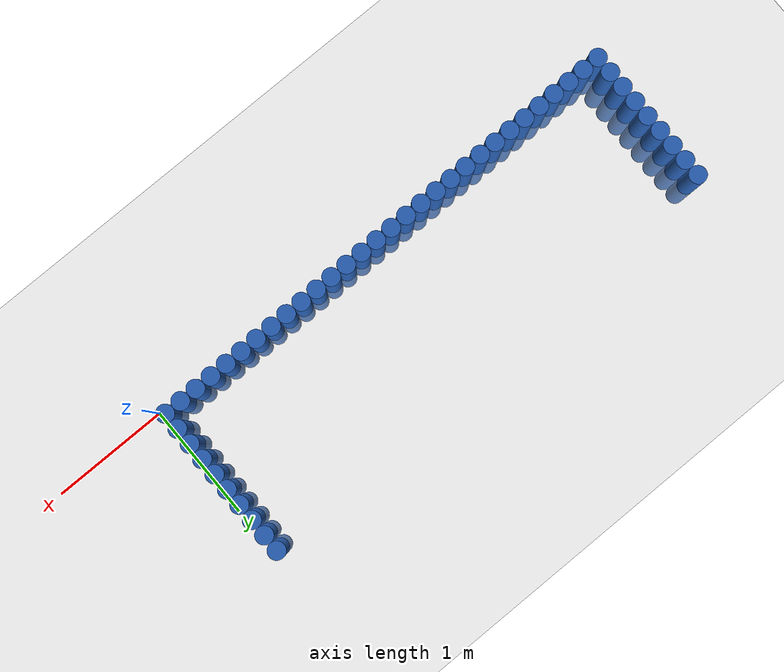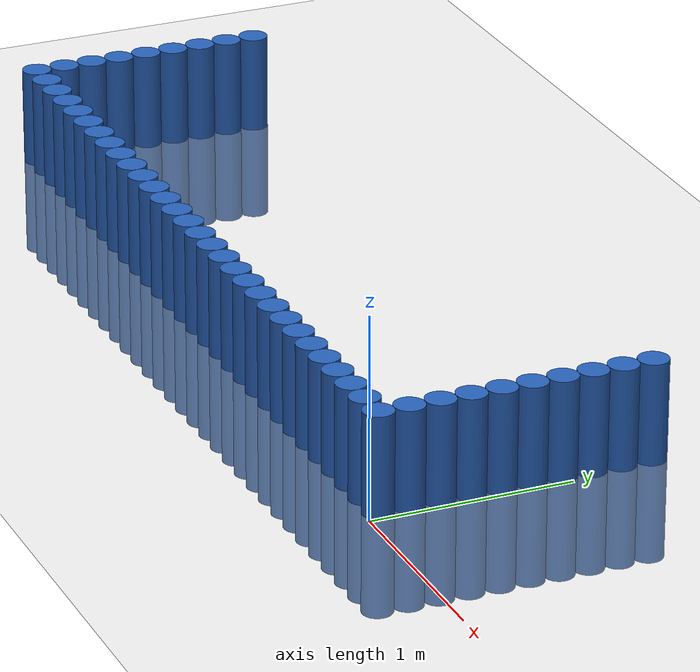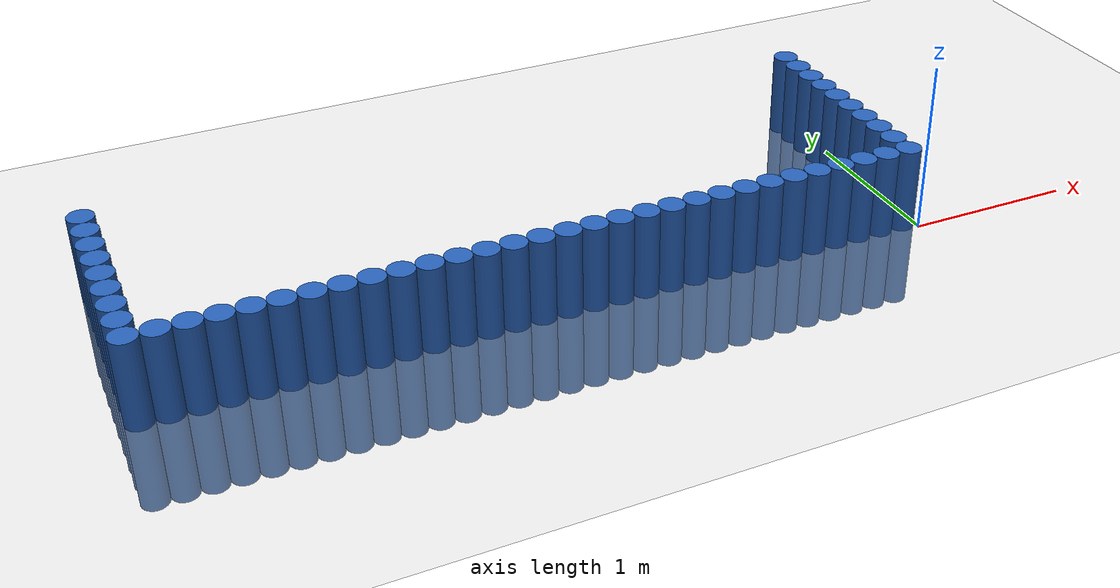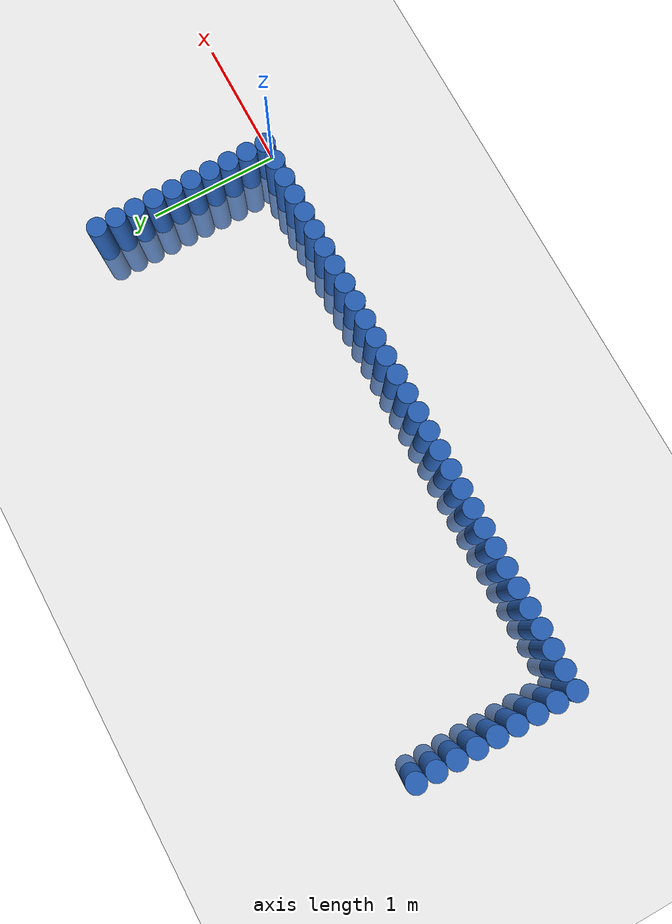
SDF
<sdf version="1.6">
 <world name="default">
  <model name="ground_plane">
   <static>1</static>
   <link name="link">
    <collision name="collision">
     <geometry><plane><normal>0 0 1</normal><size>100 100</size></plane></geometry>
     <surface><friction><ode><mu>100</mu><mu2>50</mu2></ode></friction></surface>
    </collision>
    <visual name="visual">
     <cast_shadows>0</cast_shadows>
     <geometry><plane><normal>0 0 1</normal><size>100 100</size></plane></geometry>
     <material>
      <script><uri>file://media/materials/scripts/gazebo.material</uri><name>Gazebo/Grey</name></script>
     </material>
    </visual>
   </link>
  </model>
  <model name="unit_cylinder_0">
   <static>1</static>
   <pose>-0.075000 0.075000 0.000000 0.000000 0.000000 0.000000</pose>
   <link name="link">
    <inertial>
     <mass>1</mass>
     <inertia><ixx>0.145833</ixx><ixy>0</ixy><ixz>0</ixz><iyy>0.145833</iyy><iyz>0</iyz><izz>0.125</izz></inertia>
    </inertial>
    <collision name="collision">
     <geometry><cylinder><radius>0.075000</radius><length>1</length></cylinder></geometry>
    </collision>
    <visual name="visual">
     <geometry><cylinder><radius>0.075000</radius><length>1</length></cylinder></geometry>
     <material>
      <ambient>0.152000 0.379000 0.720000 1</ambient>
      <diffuse>0.152000 0.379000 0.720000 1</diffuse>
     </material>
     <material>
      <script><name>Gazebo/Grey</name><uri>file://media/materials/scripts/gazebo.material</uri></script>
     </material>
    </visual>
   </link>
  </model>
  <model name="unit_cylinder_1">
   <static>1</static>
   <pose>-0.225000 0.075000 0.000000 0.000000 0.000000 0.000000</pose>
   <link name="link">
    <inertial>
     <mass>1</mass>
     <inertia><ixx>0.145833</ixx><ixy>0</ixy><ixz>0</ixz><iyy>0.145833</iyy><iyz>0</iyz><izz>0.125</izz></inertia>
    </inertial>
    <collision name="collision">
     <geometry><cylinder><radius>0.075000</radius><length>1</length></cylinder></geometry>
    </collision>
    <visual name="visual">
     <geometry><cylinder><radius>0.075000</radius><length>1</length></cylinder></geometry>
     <material>
      <ambient>0.152000 0.379000 0.720000 1</ambient>
      <diffuse>0.152000 0.379000 0.720000 1</diffuse>
     </material>
     <material>
      <script><name>Gazebo/Grey</name><uri>file://media/materials/scripts/gazebo.material</uri></script>
     </material>
    </visual>
   </link>
  </model>
  <model name="unit_cylinder_2">
   <static>1</static>
   <pose>-0.375000 0.075000 0.000000 0.000000 0.000000 0.000000</pose>
   <link name="link">
    <inertial>
     <mass>1</mass>
     <inertia><ixx>0.145833</ixx><ixy>0</ixy><ixz>0</ixz><iyy>0.145833</iyy><iyz>0</iyz><izz>0.125</izz></inertia>
    </inertial>
    <collision name="collision">
     <geometry><cylinder><radius>0.075000</radius><length>1</length></cylinder></geometry>
    </collision>
    <visual name="visual">
     <geometry><cylinder><radius>0.075000</radius><length>1</length></cylinder></geometry>
     <material>
      <ambient>0.152000 0.379000 0.720000 1</ambient>
      <diffuse>0.152000 0.379000 0.720000 1</diffuse>
     </material>
     <material>
      <script><name>Gazebo/Grey</name><uri>file://media/materials/scripts/gazebo.material</uri></script>
     </material>
    </visual>
   </link>
  </model>
  <model name="unit_cylinder_3">
   <static>1</static>
   <pose>-0.525000 0.075000 0.000000 0.000000 0.000000 0.000000</pose>
   <link name="link">
    <inertial>
     <mass>1</mass>
     <inertia><ixx>0.145833</ixx><ixy>0</ixy><ixz>0</ixz><iyy>0.145833</iyy><iyz>0</iyz><izz>0.125</izz></inertia>
    </inertial>
    <collision name="collision">
     <geometry><cylinder><radius>0.075000</radius><length>1</length></cylinder></geometry>
    </collision>
    <visual name="visual">
     <geometry><cylinder><radius>0.075000</radius><length>1</length></cylinder></geometry>
     <material>
      <ambient>0.152000 0.379000 0.720000 1</ambient>
      <diffuse>0.152000 0.379000 0.720000 1</diffuse>
     </material>
     <material>
      <script><name>Gazebo/Grey</name><uri>file://media/materials/scripts/gazebo.material</uri></script>
     </material>
    </visual>
   </link>
  </model>
  <model name="unit_cylinder_4">
   <static>1</static>
   <pose>-0.675000 0.075000 0.000000 0.000000 0.000000 0.000000</pose>
   <link name="link">
    <inertial>
     <mass>1</mass>
     <inertia><ixx>0.145833</ixx><ixy>0</ixy><ixz>0</ixz><iyy>0.145833</iyy><iyz>0</iyz><izz>0.125</izz></inertia>
    </inertial>
    <collision name="collision">
     <geometry><cylinder><radius>0.075000</radius><length>1</length></cylinder></geometry>
    </collision>
    <visual name="visual">
     <geometry><cylinder><radius>0.075000</radius><length>1</length></cylinder></geometry>
     <material>
      <ambient>0.152000 0.379000 0.720000 1</ambient>
      <diffuse>0.152000 0.379000 0.720000 1</diffuse>
     </material>
     <material>
      <script><name>Gazebo/Grey</name><uri>file://media/materials/scripts/gazebo.material</uri></script>
     </material>
    </visual>
   </link>
  </model>
  <model name="unit_cylinder_5">
   <static>1</static>
   <pose>-0.825000 0.075000 0.000000 0.000000 0.000000 0.000000</pose>
   <link name="link">
    <inertial>
     <mass>1</mass>
     <inertia><ixx>0.145833</ixx><ixy>0</ixy><ixz>0</ixz><iyy>0.145833</iyy><iyz>0</iyz><izz>0.125</izz></inertia>
    </inertial>
    <collision name="collision">
     <geometry><cylinder><radius>0.075000</radius><length>1</length></cylinder></geometry>
    </collision>
    <visual name="visual">
     <geometry><cylinder><radius>0.075000</radius><length>1</length></cylinder></geometry>
     <material>
      <ambient>0.152000 0.379000 0.720000 1</ambient>
      <diffuse>0.152000 0.379000 0.720000 1</diffuse>
     </material>
     <material>
      <script><name>Gazebo/Grey</name><uri>file://media/materials/scripts/gazebo.material</uri></script>
     </material>
    </visual>
   </link>
  </model>
  <model name="unit_cylinder_6">
   <static>1</static>
   <pose>-0.975000 0.075000 0.000000 0.000000 0.000000 0.000000</pose>
   <link name="link">
    <inertial>
     <mass>1</mass>
     <inertia><ixx>0.145833</ixx><ixy>0</ixy><ixz>0</ixz><iyy>0.145833</iyy><iyz>0</iyz><izz>0.125</izz></inertia>
    </inertial>
    <collision name="collision">
     <geometry><cylinder><radius>0.075000</radius><length>1</length></cylinder></geometry>
    </collision>
    <visual name="visual">
     <geometry><cylinder><radius>0.075000</radius><length>1</length></cylinder></geometry>
     <material>
      <ambient>0.152000 0.379000 0.720000 1</ambient>
      <diffuse>0.152000 0.379000 0.720000 1</diffuse>
     </material>
     <material>
      <script><name>Gazebo/Grey</name><uri>file://media/materials/scripts/gazebo.material</uri></script>
     </material>
    </visual>
   </link>
  </model>
  <model name="unit_cylinder_7">
   <static>1</static>
   <pose>-1.125000 0.075000 0.000000 0.000000 0.000000 0.000000</pose>
   <link name="link">
    <inertial>
     <mass>1</mass>
     <inertia><ixx>0.145833</ixx><ixy>0</ixy><ixz>0</ixz><iyy>0.145833</iyy><iyz>0</iyz><izz>0.125</izz></inertia>
    </inertial>
    <collision name="collision">
     <geometry><cylinder><radius>0.075000</radius><length>1</length></cylinder></geometry>
    </collision>
    <visual name="visual">
     <geometry><cylinder><radius>0.075000</radius><length>1</length></cylinder></geometry>
     <material>
      <ambient>0.152000 0.379000 0.720000 1</ambient>
      <diffuse>0.152000 0.379000 0.720000 1</diffuse>
     </material>
     <material>
      <script><name>Gazebo/Grey</name><uri>file://media/materials/scripts/gazebo.material</uri></script>
     </material>
    </visual>
   </link>
  </model>
  <model name="unit_cylinder_8">
   <static>1</static>
   <pose>-1.275000 0.075000 0.000000 0.000000 0.000000 0.000000</pose>
   <link name="link">
    <inertial>
     <mass>1</mass>
     <inertia><ixx>0.145833</ixx><ixy>0</ixy><ixz>0</ixz><iyy>0.145833</iyy><iyz>0</iyz><izz>0.125</izz></inertia>
    </inertial>
    <collision name="collision">
     <geometry><cylinder><radius>0.075000</radius><length>1</length></cylinder></geometry>
    </collision>
    <visual name="visual">
     <geometry><cylinder><radius>0.075000</radius><length>1</length></cylinder></geometry>
     <material>
      <ambient>0.152000 0.379000 0.720000 1</ambient>
      <diffuse>0.152000 0.379000 0.720000 1</diffuse>
     </material>
     <material>
      <script><name>Gazebo/Grey</name><uri>file://media/materials/scripts/gazebo.material</uri></script>
     </material>
    </visual>
   </link>
  </model>
  <model name="unit_cylinder_9">
   <static>1</static>
   <pose>-1.425000 0.075000 0.000000 0.000000 0.000000 0.000000</pose>
   <link name="link">
    <inertial>
     <mass>1</mass>
     <inertia><ixx>0.145833</ixx><ixy>0</ixy><ixz>0</ixz><iyy>0.145833</iyy><iyz>0</iyz><izz>0.125</izz></inertia>
    </inertial>
    <collision name="collision">
     <geometry><cylinder><radius>0.075000</radius><length>1</length></cylinder></geometry>
    </collision>
    <visual name="visual">
     <geometry><cylinder><radius>0.075000</radius><length>1</length></cylinder></geometry>
     <material>
      <ambient>0.152000 0.379000 0.720000 1</ambient>
      <diffuse>0.152000 0.379000 0.720000 1</diffuse>
     </material>
     <material>
      <script><name>Gazebo/Grey</name><uri>file://media/materials/scripts/gazebo.material</uri></script>
     </material>
    </visual>
   </link>
  </model>
  <model name="unit_cylinder_10">
   <static>1</static>
   <pose>-1.575000 0.075000 0.000000 0.000000 0.000000 0.000000</pose>
   <link name="link">
    <inertial>
     <mass>1</mass>
     <inertia><ixx>0.145833</ixx><ixy>0</ixy><ixz>0</ixz><iyy>0.145833</iyy><iyz>0</iyz><izz>0.125</izz></inertia>
    </inertial>
    <collision name="collision">
     <geometry><cylinder><radius>0.075000</radius><length>1</length></cylinder></geometry>
    </collision>
    <visual name="visual">
     <geometry><cylinder><radius>0.075000</radius><length>1</length></cylinder></geometry>
     <material>
      <ambient>0.152000 0.379000 0.720000 1</ambient>
      <diffuse>0.152000 0.379000 0.720000 1</diffuse>
     </material>
     <material>
      <script><name>Gazebo/Grey</name><uri>file://media/materials/scripts/gazebo.material</uri></script>
     </material>
    </visual>
   </link>
  </model>
  <model name="unit_cylinder_11">
   <static>1</static>
   <pose>-1.725000 0.075000 0.000000 0.000000 0.000000 0.000000</pose>
   <link name="link">
    <inertial>
     <mass>1</mass>
     <inertia><ixx>0.145833</ixx><ixy>0</ixy><ixz>0</ixz><iyy>0.145833</iyy><iyz>0</iyz><izz>0.125</izz></inertia>
    </inertial>
    <collision name="collision">
     <geometry><cylinder><radius>0.075000</radius><length>1</length></cylinder></geometry>
    </collision>
    <visual name="visual">
     <geometry><cylinder><radius>0.075000</radius><length>1</length></cylinder></geometry>
     <material>
      <ambient>0.152000 0.379000 0.720000 1</ambient>
      <diffuse>0.152000 0.379000 0.720000 1</diffuse>
     </material>
     <material>
      <script><name>Gazebo/Grey</name><uri>file://media/materials/scripts/gazebo.material</uri></script>
     </material>
    </visual>
   </link>
  </model>
  <model name="unit_cylinder_12">
   <static>1</static>
   <pose>-1.875000 0.075000 0.000000 0.000000 0.000000 0.000000</pose>
   <link name="link">
    <inertial>
     <mass>1</mass>
     <inertia><ixx>0.145833</ixx><ixy>0</ixy><ixz>0</ixz><iyy>0.145833</iyy><iyz>0</iyz><izz>0.125</izz></inertia>
    </inertial>
    <collision name="collision">
     <geometry><cylinder><radius>0.075000</radius><length>1</length></cylinder></geometry>
    </collision>
    <visual name="visual">
     <geometry><cylinder><radius>0.075000</radius><length>1</length></cylinder></geometry>
     <material>
      <ambient>0.152000 0.379000 0.720000 1</ambient>
      <diffuse>0.152000 0.379000 0.720000 1</diffuse>
     </material>
     <material>
      <script><name>Gazebo/Grey</name><uri>file://media/materials/scripts/gazebo.material</uri></script>
     </material>
    </visual>
   </link>
  </model>
  <model name="unit_cylinder_13">
   <static>1</static>
   <pose>-2.025000 0.075000 0.000000 0.000000 0.000000 0.000000</pose>
   <link name="link">
    <inertial>
     <mass>1</mass>
     <inertia><ixx>0.145833</ixx><ixy>0</ixy><ixz>0</ixz><iyy>0.145833</iyy><iyz>0</iyz><izz>0.125</izz></inertia>
    </inertial>
    <collision name="collision">
     <geometry><cylinder><radius>0.075000</radius><length>1</length></cylinder></geometry>
    </collision>
    <visual name="visual">
     <geometry><cylinder><radius>0.075000</radius><length>1</length></cylinder></geometry>
     <material>
      <ambient>0.152000 0.379000 0.720000 1</ambient>
      <diffuse>0.152000 0.379000 0.720000 1</diffuse>
     </material>
     <material>
      <script><name>Gazebo/Grey</name><uri>file://media/materials/scripts/gazebo.material</uri></script>
     </material>
    </visual>
   </link>
  </model>
  <model name="unit_cylinder_14">
   <static>1</static>
   <pose>-2.175000 0.075000 0.000000 0.000000 0.000000 0.000000</pose>
   <link name="link">
    <inertial>
     <mass>1</mass>
     <inertia><ixx>0.145833</ixx><ixy>0</ixy><ixz>0</ixz><iyy>0.145833</iyy><iyz>0</iyz><izz>0.125</izz></inertia>
    </inertial>
    <collision name="collision">
     <geometry><cylinder><radius>0.075000</radius><length>1</length></cylinder></geometry>
    </collision>
    <visual name="visual">
     <geometry><cylinder><radius>0.075000</radius><length>1</length></cylinder></geometry>
     <material>
      <ambient>0.152000 0.379000 0.720000 1</ambient>
      <diffuse>0.152000 0.379000 0.720000 1</diffuse>
     </material>
     <material>
      <script><name>Gazebo/Grey</name><uri>file://media/materials/scripts/gazebo.material</uri></script>
     </material>
    </visual>
   </link>
  </model>
  <model name="unit_cylinder_15">
   <static>1</static>
   <pose>-2.325000 0.075000 0.000000 0.000000 0.000000 0.000000</pose>
   <link name="link">
    <inertial>
     <mass>1</mass>
     <inertia><ixx>0.145833</ixx><ixy>0</ixy><ixz>0</ixz><iyy>0.145833</iyy><iyz>0</iyz><izz>0.125</izz></inertia>
    </inertial>
    <collision name="collision">
     <geometry><cylinder><radius>0.075000</radius><length>1</length></cylinder></geometry>
    </collision>
    <visual name="visual">
     <geometry><cylinder><radius>0.075000</radius><length>1</length></cylinder></geometry>
     <material>
      <ambient>0.152000 0.379000 0.720000 1</ambient>
      <diffuse>0.152000 0.379000 0.720000 1</diffuse>
     </material>
     <material>
      <script><name>Gazebo/Grey</name><uri>file://media/materials/scripts/gazebo.material</uri></script>
     </material>
    </visual>
   </link>
  </model>
  <model name="unit_cylinder_16">
   <static>1</static>
   <pose>-2.475000 0.075000 0.000000 0.000000 0.000000 0.000000</pose>
   <link name="link">
    <inertial>
     <mass>1</mass>
     <inertia><ixx>0.145833</ixx><ixy>0</ixy><ixz>0</ixz><iyy>0.145833</iyy><iyz>0</iyz><izz>0.125</izz></inertia>
    </inertial>
    <collision name="collision">
     <geometry><cylinder><radius>0.075000</radius><length>1</length></cylinder></geometry>
    </collision>
    <visual name="visual">
     <geometry><cylinder><radius>0.075000</radius><length>1</length></cylinder></geometry>
     <material>
      <ambient>0.152000 0.379000 0.720000 1</ambient>
      <diffuse>0.152000 0.379000 0.720000 1</diffuse>
     </material>
     <material>
      <script><name>Gazebo/Grey</name><uri>file://media/materials/scripts/gazebo.material</uri></script>
     </material>
    </visual>
   </link>
  </model>
  <model name="unit_cylinder_17">
   <static>1</static>
   <pose>-2.625000 0.075000 0.000000 0.000000 0.000000 0.000000</pose>
   <link name="link">
    <inertial>
     <mass>1</mass>
     <inertia><ixx>0.145833</ixx><ixy>0</ixy><ixz>0</ixz><iyy>0.145833</iyy><iyz>0</iyz><izz>0.125</izz></inertia>
    </inertial>
    <collision name="collision">
     <geometry><cylinder><radius>0.075000</radius><length>1</length></cylinder></geometry>
    </collision>
    <visual name="visual">
     <geometry><cylinder><radius>0.075000</radius><length>1</length></cylinder></geometry>
     <material>
      <ambient>0.152000 0.379000 0.720000 1</ambient>
      <diffuse>0.152000 0.379000 0.720000 1</diffuse>
     </material>
     <material>
      <script><name>Gazebo/Grey</name><uri>file://media/materials/scripts/gazebo.material</uri></script>
     </material>
    </visual>
   </link>
  </model>
  <model name="unit_cylinder_18">
   <static>1</static>
   <pose>-2.775000 0.075000 0.000000 0.000000 0.000000 0.000000</pose>
   <link name="link">
    <inertial>
     <mass>1</mass>
     <inertia><ixx>0.145833</ixx><ixy>0</ixy><ixz>0</ixz><iyy>0.145833</iyy><iyz>0</iyz><izz>0.125</izz></inertia>
    </inertial>
    <collision name="collision">
     <geometry><cylinder><radius>0.075000</radius><length>1</length></cylinder></geometry>
    </collision>
    <visual name="visual">
     <geometry><cylinder><radius>0.075000</radius><length>1</length></cylinder></geometry>
     <material>
      <ambient>0.152000 0.379000 0.720000 1</ambient>
      <diffuse>0.152000 0.379000 0.720000 1</diffuse>
     </material>
     <material>
      <script><name>Gazebo/Grey</name><uri>file://media/materials/scripts/gazebo.material</uri></script>
     </material>
    </visual>
   </link>
  </model>
  <model name="unit_cylinder_19">
   <static>1</static>
   <pose>-2.925000 0.075000 0.000000 0.000000 0.000000 0.000000</pose>
   <link name="link">
    <inertial>
     <mass>1</mass>
     <inertia><ixx>0.145833</ixx><ixy>0</ixy><ixz>0</ixz><iyy>0.145833</iyy><iyz>0</iyz><izz>0.125</izz></inertia>
    </inertial>
    <collision name="collision">
     <geometry><cylinder><radius>0.075000</radius><length>1</length></cylinder></geometry>
    </collision>
    <visual name="visual">
     <geometry><cylinder><radius>0.075000</radius><length>1</length></cylinder></geometry>
     <material>
      <ambient>0.152000 0.379000 0.720000 1</ambient>
      <diffuse>0.152000 0.379000 0.720000 1</diffuse>
     </material>
     <material>
      <script><name>Gazebo/Grey</name><uri>file://media/materials/scripts/gazebo.material</uri></script>
     </material>
    </visual>
   </link>
  </model>
  <model name="unit_cylinder_20">
   <static>1</static>
   <pose>-3.075000 0.075000 0.000000 0.000000 0.000000 0.000000</pose>
   <link name="link">
    <inertial>
     <mass>1</mass>
     <inertia><ixx>0.145833</ixx><ixy>0</ixy><ixz>0</ixz><iyy>0.145833</iyy><iyz>0</iyz><izz>0.125</izz></inertia>
    </inertial>
    <collision name="collision">
     <geometry><cylinder><radius>0.075000</radius><length>1</length></cylinder></geometry>
    </collision>
    <visual name="visual">
     <geometry><cylinder><radius>0.075000</radius><length>1</length></cylinder></geometry>
     <material>
      <ambient>0.152000 0.379000 0.720000 1</ambient>
      <diffuse>0.152000 0.379000 0.720000 1</diffuse>
     </material>
     <material>
      <script><name>Gazebo/Grey</name><uri>file://media/materials/scripts/gazebo.material</uri></script>
     </material>
    </visual>
   </link>
  </model>
  <model name="unit_cylinder_21">
   <static>1</static>
   <pose>-3.225000 0.075000 0.000000 0.000000 0.000000 0.000000</pose>
   <link name="link">
    <inertial>
     <mass>1</mass>
     <inertia><ixx>0.145833</ixx><ixy>0</ixy><ixz>0</ixz><iyy>0.145833</iyy><iyz>0</iyz><izz>0.125</izz></inertia>
    </inertial>
    <collision name="collision">
     <geometry><cylinder><radius>0.075000</radius><length>1</length></cylinder></geometry>
    </collision>
    <visual name="visual">
     <geometry><cylinder><radius>0.075000</radius><length>1</length></cylinder></geometry>
     <material>
      <ambient>0.152000 0.379000 0.720000 1</ambient>
      <diffuse>0.152000 0.379000 0.720000 1</diffuse>
     </material>
     <material>
      <script><name>Gazebo/Grey</name><uri>file://media/materials/scripts/gazebo.material</uri></script>
     </material>
    </visual>
   </link>
  </model>
  <model name="unit_cylinder_22">
   <static>1</static>
   <pose>-3.375000 0.075000 0.000000 0.000000 0.000000 0.000000</pose>
   <link name="link">
    <inertial>
     <mass>1</mass>
     <inertia><ixx>0.145833</ixx><ixy>0</ixy><ixz>0</ixz><iyy>0.145833</iyy><iyz>0</iyz><izz>0.125</izz></inertia>
    </inertial>
    <collision name="collision">
     <geometry><cylinder><radius>0.075000</radius><length>1</length></cylinder></geometry>
    </collision>
    <visual name="visual">
     <geometry><cylinder><radius>0.075000</radius><length>1</length></cylinder></geometry>
     <material>
      <ambient>0.152000 0.379000 0.720000 1</ambient>
      <diffuse>0.152000 0.379000 0.720000 1</diffuse>
     </material>
     <material>
      <script><name>Gazebo/Grey</name><uri>file://media/materials/scripts/gazebo.material</uri></script>
     </material>
    </visual>
   </link>
  </model>
  <model name="unit_cylinder_23">
   <static>1</static>
   <pose>-3.525000 0.075000 0.000000 0.000000 0.000000 0.000000</pose>
   <link name="link">
    <inertial>
     <mass>1</mass>
     <inertia><ixx>0.145833</ixx><ixy>0</ixy><ixz>0</ixz><iyy>0.145833</iyy><iyz>0</iyz><izz>0.125</izz></inertia>
    </inertial>
    <collision name="collision">
     <geometry><cylinder><radius>0.075000</radius><length>1</length></cylinder></geometry>
    </collision>
    <visual name="visual">
     <geometry><cylinder><radius>0.075000</radius><length>1</length></cylinder></geometry>
     <material>
      <ambient>0.152000 0.379000 0.720000 1</ambient>
      <diffuse>0.152000 0.379000 0.720000 1</diffuse>
     </material>
     <material>
      <script><name>Gazebo/Grey</name><uri>file://media/materials/scripts/gazebo.material</uri></script>
     </material>
    </visual>
   </link>
  </model>
  <model name="unit_cylinder_24">
   <static>1</static>
   <pose>-3.675000 0.075000 0.000000 0.000000 0.000000 0.000000</pose>
   <link name="link">
    <inertial>
     <mass>1</mass>
     <inertia><ixx>0.145833</ixx><ixy>0</ixy><ixz>0</ixz><iyy>0.145833</iyy><iyz>0</iyz><izz>0.125</izz></inertia>
    </inertial>
    <collision name="collision">
     <geometry><cylinder><radius>0.075000</radius><length>1</length></cylinder></geometry>
    </collision>
    <visual name="visual">
     <geometry><cylinder><radius>0.075000</radius><length>1</length></cylinder></geometry>
     <material>
      <ambient>0.152000 0.379000 0.720000 1</ambient>
      <diffuse>0.152000 0.379000 0.720000 1</diffuse>
     </material>
     <material>
      <script><name>Gazebo/Grey</name><uri>file://media/materials/scripts/gazebo.material</uri></script>
     </material>
    </visual>
   </link>
  </model>
  <model name="unit_cylinder_25">
   <static>1</static>
   <pose>-3.825000 0.075000 0.000000 0.000000 0.000000 0.000000</pose>
   <link name="link">
    <inertial>
     <mass>1</mass>
     <inertia><ixx>0.145833</ixx><ixy>0</ixy><ixz>0</ixz><iyy>0.145833</iyy><iyz>0</iyz><izz>0.125</izz></inertia>
    </inertial>
    <collision name="collision">
     <geometry><cylinder><radius>0.075000</radius><length>1</length></cylinder></geometry>
    </collision>
    <visual name="visual">
     <geometry><cylinder><radius>0.075000</radius><length>1</length></cylinder></geometry>
     <material>
      <ambient>0.152000 0.379000 0.720000 1</ambient>
      <diffuse>0.152000 0.379000 0.720000 1</diffuse>
     </material>
     <material>
      <script><name>Gazebo/Grey</name><uri>file://media/materials/scripts/gazebo.material</uri></script>
     </material>
    </visual>
   </link>
  </model>
  <model name="unit_cylinder_26">
   <static>1</static>
   <pose>-3.975000 0.075000 0.000000 0.000000 0.000000 0.000000</pose>
   <link name="link">
    <inertial>
     <mass>1</mass>
     <inertia><ixx>0.145833</ixx><ixy>0</ixy><ixz>0</ixz><iyy>0.145833</iyy><iyz>0</iyz><izz>0.125</izz></inertia>
    </inertial>
    <collision name="collision">
     <geometry><cylinder><radius>0.075000</radius><length>1</length></cylinder></geometry>
    </collision>
    <visual name="visual">
     <geometry><cylinder><radius>0.075000</radius><length>1</length></cylinder></geometry>
     <material>
      <ambient>0.152000 0.379000 0.720000 1</ambient>
      <diffuse>0.152000 0.379000 0.720000 1</diffuse>
     </material>
     <material>
      <script><name>Gazebo/Grey</name><uri>file://media/materials/scripts/gazebo.material</uri></script>
     </material>
    </visual>
   </link>
  </model>
  <model name="unit_cylinder_27">
   <static>1</static>
   <pose>-4.125000 0.075000 0.000000 0.000000 0.000000 0.000000</pose>
   <link name="link">
    <inertial>
     <mass>1</mass>
     <inertia><ixx>0.145833</ixx><ixy>0</ixy><ixz>0</ixz><iyy>0.145833</iyy><iyz>0</iyz><izz>0.125</izz></inertia>
    </inertial>
    <collision name="collision">
     <geometry><cylinder><radius>0.075000</radius><length>1</length></cylinder></geometry>
    </collision>
    <visual name="visual">
     <geometry><cylinder><radius>0.075000</radius><length>1</length></cylinder></geometry>
     <material>
      <ambient>0.152000 0.379000 0.720000 1</ambient>
      <diffuse>0.152000 0.379000 0.720000 1</diffuse>
     </material>
     <material>
      <script><name>Gazebo/Grey</name><uri>file://media/materials/scripts/gazebo.material</uri></script>
     </material>
    </visual>
   </link>
  </model>
  <model name="unit_cylinder_28">
   <static>1</static>
   <pose>-4.275000 0.075000 0.000000 0.000000 0.000000 0.000000</pose>
   <link name="link">
    <inertial>
     <mass>1</mass>
     <inertia><ixx>0.145833</ixx><ixy>0</ixy><ixz>0</ixz><iyy>0.145833</iyy><iyz>0</iyz><izz>0.125</izz></inertia>
    </inertial>
    <collision name="collision">
     <geometry><cylinder><radius>0.075000</radius><length>1</length></cylinder></geometry>
    </collision>
    <visual name="visual">
     <geometry><cylinder><radius>0.075000</radius><length>1</length></cylinder></geometry>
     <material>
      <ambient>0.152000 0.379000 0.720000 1</ambient>
      <diffuse>0.152000 0.379000 0.720000 1</diffuse>
     </material>
     <material>
      <script><name>Gazebo/Grey</name><uri>file://media/materials/scripts/gazebo.material</uri></script>
     </material>
    </visual>
   </link>
  </model>
  <model name="unit_cylinder_29">
   <static>1</static>
   <pose>-4.425000 0.075000 0.000000 0.000000 0.000000 0.000000</pose>
   <link name="link">
    <inertial>
     <mass>1</mass>
     <inertia><ixx>0.145833</ixx><ixy>0</ixy><ixz>0</ixz><iyy>0.145833</iyy><iyz>0</iyz><izz>0.125</izz></inertia>
    </inertial>
    <collision name="collision">
     <geometry><cylinder><radius>0.075000</radius><length>1</length></cylinder></geometry>
    </collision>
    <visual name="visual">
     <geometry><cylinder><radius>0.075000</radius><length>1</length></cylinder></geometry>
     <material>
      <ambient>0.152000 0.379000 0.720000 1</ambient>
      <diffuse>0.152000 0.379000 0.720000 1</diffuse>
     </material>
     <material>
      <script><name>Gazebo/Grey</name><uri>file://media/materials/scripts/gazebo.material</uri></script>
     </material>
    </visual>
   </link>
  </model>
  <model name="unit_cylinder_30">
   <static>1</static>
   <pose>-0.075000 0.225000 0.000000 0.000000 0.000000 0.000000</pose>
   <link name="link">
    <inertial>
     <mass>1</mass>
     <inertia><ixx>0.145833</ixx><ixy>0</ixy><ixz>0</ixz><iyy>0.145833</iyy><iyz>0</iyz><izz>0.125</izz></inertia>
    </inertial>
    <collision name="collision">
     <geometry><cylinder><radius>0.075000</radius><length>1</length></cylinder></geometry>
    </collision>
    <visual name="visual">
     <geometry><cylinder><radius>0.075000</radius><length>1</length></cylinder></geometry>
     <material>
      <ambient>0.152000 0.379000 0.720000 1</ambient>
      <diffuse>0.152000 0.379000 0.720000 1</diffuse>
     </material>
     <material>
      <script><name>Gazebo/Grey</name><uri>file://media/materials/scripts/gazebo.material</uri></script>
     </material>
    </visual>
   </link>
  </model>
  <model name="unit_cylinder_31">
   <static>1</static>
   <pose>-4.425000 0.225000 0.000000 0.000000 0.000000 0.000000</pose>
   <link name="link">
    <inertial>
     <mass>1</mass>
     <inertia><ixx>0.145833</ixx><ixy>0</ixy><ixz>0</ixz><iyy>0.145833</iyy><iyz>0</iyz><izz>0.125</izz></inertia>
    </inertial>
    <collision name="collision">
     <geometry><cylinder><radius>0.075000</radius><length>1</length></cylinder></geometry>
    </collision>
    <visual name="visual">
     <geometry><cylinder><radius>0.075000</radius><length>1</length></cylinder></geometry>
     <material>
      <ambient>0.152000 0.379000 0.720000 1</ambient>
      <diffuse>0.152000 0.379000 0.720000 1</diffuse>
     </material>
     <material>
      <script><name>Gazebo/Grey</name><uri>file://media/materials/scripts/gazebo.material</uri></script>
     </material>
    </visual>
   </link>
  </model>
  <model name="unit_cylinder_32">
   <static>1</static>
   <pose>-0.075000 0.375000 0.000000 0.000000 0.000000 0.000000</pose>
   <link name="link">
    <inertial>
     <mass>1</mass>
     <inertia><ixx>0.145833</ixx><ixy>0</ixy><ixz>0</ixz><iyy>0.145833</iyy><iyz>0</iyz><izz>0.125</izz></inertia>
    </inertial>
    <collision name="collision">
     <geometry><cylinder><radius>0.075000</radius><length>1</length></cylinder></geometry>
    </collision>
    <visual name="visual">
     <geometry><cylinder><radius>0.075000</radius><length>1</length></cylinder></geometry>
     <material>
      <ambient>0.152000 0.379000 0.720000 1</ambient>
      <diffuse>0.152000 0.379000 0.720000 1</diffuse>
     </material>
     <material>
      <script><name>Gazebo/Grey</name><uri>file://media/materials/scripts/gazebo.material</uri></script>
     </material>
    </visual>
   </link>
  </model>
  <model name="unit_cylinder_33">
   <static>1</static>
   <pose>-4.425000 0.375000 0.000000 0.000000 0.000000 0.000000</pose>
   <link name="link">
    <inertial>
     <mass>1</mass>
     <inertia><ixx>0.145833</ixx><ixy>0</ixy><ixz>0</ixz><iyy>0.145833</iyy><iyz>0</iyz><izz>0.125</izz></inertia>
    </inertial>
    <collision name="collision">
     <geometry><cylinder><radius>0.075000</radius><length>1</length></cylinder></geometry>
    </collision>
    <visual name="visual">
     <geometry><cylinder><radius>0.075000</radius><length>1</length></cylinder></geometry>
     <material>
      <ambient>0.152000 0.379000 0.720000 1</ambient>
      <diffuse>0.152000 0.379000 0.720000 1</diffuse>
     </material>
     <material>
      <script><name>Gazebo/Grey</name><uri>file://media/materials/scripts/gazebo.material</uri></script>
     </material>
    </visual>
   </link>
  </model>
  <model name="unit_cylinder_34">
   <static>1</static>
   <pose>-0.075000 0.525000 0.000000 0.000000 0.000000 0.000000</pose>
   <link name="link">
    <inertial>
     <mass>1</mass>
     <inertia><ixx>0.145833</ixx><ixy>0</ixy><ixz>0</ixz><iyy>0.145833</iyy><iyz>0</iyz><izz>0.125</izz></inertia>
    </inertial>
    <collision name="collision">
     <geometry><cylinder><radius>0.075000</radius><length>1</length></cylinder></geometry>
    </collision>
    <visual name="visual">
     <geometry><cylinder><radius>0.075000</radius><length>1</length></cylinder></geometry>
     <material>
      <ambient>0.152000 0.379000 0.720000 1</ambient>
      <diffuse>0.152000 0.379000 0.720000 1</diffuse>
     </material>
     <material>
      <script><name>Gazebo/Grey</name><uri>file://media/materials/scripts/gazebo.material</uri></script>
     </material>
    </visual>
   </link>
  </model>
  <model name="unit_cylinder_35">
   <static>1</static>
   <pose>-4.425000 0.525000 0.000000 0.000000 0.000000 0.000000</pose>
   <link name="link">
    <inertial>
     <mass>1</mass>
     <inertia><ixx>0.145833</ixx><ixy>0</ixy><ixz>0</ixz><iyy>0.145833</iyy><iyz>0</iyz><izz>0.125</izz></inertia>
    </inertial>
    <collision name="collision">
     <geometry><cylinder><radius>0.075000</radius><length>1</length></cylinder></geometry>
    </collision>
    <visual name="visual">
     <geometry><cylinder><radius>0.075000</radius><length>1</length></cylinder></geometry>
     <material>
      <ambient>0.152000 0.379000 0.720000 1</ambient>
      <diffuse>0.152000 0.379000 0.720000 1</diffuse>
     </material>
     <material>
      <script><name>Gazebo/Grey</name><uri>file://media/materials/scripts/gazebo.material</uri></script>
     </material>
    </visual>
   </link>
  </model>
  <model name="unit_cylinder_36">
   <static>1</static>
   <pose>-0.075000 0.675000 0.000000 0.000000 0.000000 0.000000</pose>
   <link name="link">
    <inertial>
     <mass>1</mass>
     <inertia><ixx>0.145833</ixx><ixy>0</ixy><ixz>0</ixz><iyy>0.145833</iyy><iyz>0</iyz><izz>0.125</izz></inertia>
    </inertial>
    <collision name="collision">
     <geometry><cylinder><radius>0.075000</radius><length>1</length></cylinder></geometry>
    </collision>
    <visual name="visual">
     <geometry><cylinder><radius>0.075000</radius><length>1</length></cylinder></geometry>
     <material>
      <ambient>0.152000 0.379000 0.720000 1</ambient>
      <diffuse>0.152000 0.379000 0.720000 1</diffuse>
     </material>
     <material>
      <script><name>Gazebo/Grey</name><uri>file://media/materials/scripts/gazebo.material</uri></script>
     </material>
    </visual>
   </link>
  </model>
  <model name="unit_cylinder_37">
   <static>1</static>
   <pose>-4.425000 0.675000 0.000000 0.000000 0.000000 0.000000</pose>
   <link name="link">
    <inertial>
     <mass>1</mass>
     <inertia><ixx>0.145833</ixx><ixy>0</ixy><ixz>0</ixz><iyy>0.145833</iyy><iyz>0</iyz><izz>0.125</izz></inertia>
    </inertial>
    <collision name="collision">
     <geometry><cylinder><radius>0.075000</radius><length>1</length></cylinder></geometry>
    </collision>
    <visual name="visual">
     <geometry><cylinder><radius>0.075000</radius><length>1</length></cylinder></geometry>
     <material>
      <ambient>0.152000 0.379000 0.720000 1</ambient>
      <diffuse>0.152000 0.379000 0.720000 1</diffuse>
     </material>
     <material>
      <script><name>Gazebo/Grey</name><uri>file://media/materials/scripts/gazebo.material</uri></script>
     </material>
    </visual>
   </link>
  </model>
  <model name="unit_cylinder_38">
   <static>1</static>
   <pose>-0.075000 0.825000 0.000000 0.000000 0.000000 0.000000</pose>
   <link name="link">
    <inertial>
     <mass>1</mass>
     <inertia><ixx>0.145833</ixx><ixy>0</ixy><ixz>0</ixz><iyy>0.145833</iyy><iyz>0</iyz><izz>0.125</izz></inertia>
    </inertial>
    <collision name="collision">
     <geometry><cylinder><radius>0.075000</radius><length>1</length></cylinder></geometry>
    </collision>
    <visual name="visual">
     <geometry><cylinder><radius>0.075000</radius><length>1</length></cylinder></geometry>
     <material>
      <ambient>0.152000 0.379000 0.720000 1</ambient>
      <diffuse>0.152000 0.379000 0.720000 1</diffuse>
     </material>
     <material>
      <script><name>Gazebo/Grey</name><uri>file://media/materials/scripts/gazebo.material</uri></script>
     </material>
    </visual>
   </link>
  </model>
  <model name="unit_cylinder_39">
   <static>1</static>
   <pose>-4.425000 0.825000 0.000000 0.000000 0.000000 0.000000</pose>
   <link name="link">
    <inertial>
     <mass>1</mass>
     <inertia><ixx>0.145833</ixx><ixy>0</ixy><ixz>0</ixz><iyy>0.145833</iyy><iyz>0</iyz><izz>0.125</izz></inertia>
    </inertial>
    <collision name="collision">
     <geometry><cylinder><radius>0.075000</radius><length>1</length></cylinder></geometry>
    </collision>
    <visual name="visual">
     <geometry><cylinder><radius>0.075000</radius><length>1</length></cylinder></geometry>
     <material>
      <ambient>0.152000 0.379000 0.720000 1</ambient>
      <diffuse>0.152000 0.379000 0.720000 1</diffuse>
     </material>
     <material>
      <script><name>Gazebo/Grey</name><uri>file://media/materials/scripts/gazebo.material</uri></script>
     </material>
    </visual>
   </link>
  </model>
  <model name="unit_cylinder_40">
   <static>1</static>
   <pose>-0.075000 0.975000 0.000000 0.000000 0.000000 0.000000</pose>
   <link name="link">
    <inertial>
     <mass>1</mass>
     <inertia><ixx>0.145833</ixx><ixy>0</ixy><ixz>0</ixz><iyy>0.145833</iyy><iyz>0</iyz><izz>0.125</izz></inertia>
    </inertial>
    <collision name="collision">
     <geometry><cylinder><radius>0.075000</radius><length>1</length></cylinder></geometry>
    </collision>
    <visual name="visual">
     <geometry><cylinder><radius>0.075000</radius><length>1</length></cylinder></geometry>
     <material>
      <ambient>0.152000 0.379000 0.720000 1</ambient>
      <diffuse>0.152000 0.379000 0.720000 1</diffuse>
     </material>
     <material>
      <script><name>Gazebo/Grey</name><uri>file://media/materials/scripts/gazebo.material</uri></script>
     </material>
    </visual>
   </link>
  </model>
  <model name="unit_cylinder_41">
   <static>1</static>
   <pose>-4.425000 0.975000 0.000000 0.000000 0.000000 0.000000</pose>
   <link name="link">
    <inertial>
     <mass>1</mass>
     <inertia><ixx>0.145833</ixx><ixy>0</ixy><ixz>0</ixz><iyy>0.145833</iyy><iyz>0</iyz><izz>0.125</izz></inertia>
    </inertial>
    <collision name="collision">
     <geometry><cylinder><radius>0.075000</radius><length>1</length></cylinder></geometry>
    </collision>
    <visual name="visual">
     <geometry><cylinder><radius>0.075000</radius><length>1</length></cylinder></geometry>
     <material>
      <ambient>0.152000 0.379000 0.720000 1</ambient>
      <diffuse>0.152000 0.379000 0.720000 1</diffuse>
     </material>
     <material>
      <script><name>Gazebo/Grey</name><uri>file://media/materials/scripts/gazebo.material</uri></script>
     </material>
    </visual>
   </link>
  </model>
  <model name="unit_cylinder_42">
   <static>1</static>
   <pose>-0.075000 1.125000 0.000000 0.000000 0.000000 0.000000</pose>
   <link name="link">
    <inertial>
     <mass>1</mass>
     <inertia><ixx>0.145833</ixx><ixy>0</ixy><ixz>0</ixz><iyy>0.145833</iyy><iyz>0</iyz><izz>0.125</izz></inertia>
    </inertial>
    <collision name="collision">
     <geometry><cylinder><radius>0.075000</radius><length>1</length></cylinder></geometry>
    </collision>
    <visual name="visual">
     <geometry><cylinder><radius>0.075000</radius><length>1</length></cylinder></geometry>
     <material>
      <ambient>0.152000 0.379000 0.720000 1</ambient>
      <diffuse>0.152000 0.379000 0.720000 1</diffuse>
     </material>
     <material>
      <script><name>Gazebo/Grey</name><uri>file://media/materials/scripts/gazebo.material</uri></script>
     </material>
    </visual>
   </link>
  </model>
  <model name="unit_cylinder_43">
   <static>1</static>
   <pose>-4.425000 1.125000 0.000000 0.000000 0.000000 0.000000</pose>
   <link name="link">
    <inertial>
     <mass>1</mass>
     <inertia><ixx>0.145833</ixx><ixy>0</ixy><ixz>0</ixz><iyy>0.145833</iyy><iyz>0</iyz><izz>0.125</izz></inertia>
    </inertial>
    <collision name="collision">
     <geometry><cylinder><radius>0.075000</radius><length>1</length></cylinder></geometry>
    </collision>
    <visual name="visual">
     <geometry><cylinder><radius>0.075000</radius><length>1</length></cylinder></geometry>
     <material>
      <ambient>0.152000 0.379000 0.720000 1</ambient>
      <diffuse>0.152000 0.379000 0.720000 1</diffuse>
     </material>
     <material>
      <script><name>Gazebo/Grey</name><uri>file://media/materials/scripts/gazebo.material</uri></script>
     </material>
    </visual>
   </link>
  </model>
  <model name="unit_cylinder_44">
   <static>1</static>
   <pose>-0.075000 1.275000 0.000000 0.000000 0.000000 0.000000</pose>
   <link name="link">
    <inertial>
     <mass>1</mass>
     <inertia><ixx>0.145833</ixx><ixy>0</ixy><ixz>0</ixz><iyy>0.145833</iyy><iyz>0</iyz><izz>0.125</izz></inertia>
    </inertial>
    <collision name="collision">
     <geometry><cylinder><radius>0.075000</radius><length>1</length></cylinder></geometry>
    </collision>
    <visual name="visual">
     <geometry><cylinder><radius>0.075000</radius><length>1</length></cylinder></geometry>
     <material>
      <ambient>0.152000 0.379000 0.720000 1</ambient>
      <diffuse>0.152000 0.379000 0.720000 1</diffuse>
     </material>
     <material>
      <script><name>Gazebo/Grey</name><uri>file://media/materials/scripts/gazebo.material</uri></script>
     </material>
    </visual>
   </link>
  </model>
  <model name="unit_cylinder_45">
   <static>1</static>
   <pose>-4.425000 1.275000 0.000000 0.000000 0.000000 0.000000</pose>
   <link name="link">
    <inertial>
     <mass>1</mass>
     <inertia><ixx>0.145833</ixx><ixy>0</ixy><ixz>0</ixz><iyy>0.145833</iyy><iyz>0</iyz><izz>0.125</izz></inertia>
    </inertial>
    <collision name="collision">
     <geometry><cylinder><radius>0.075000</radius><length>1</length></cylinder></geometry>
    </collision>
    <visual name="visual">
     <geometry><cylinder><radius>0.075000</radius><length>1</length></cylinder></geometry>
     <material>
      <ambient>0.152000 0.379000 0.720000 1</ambient>
      <diffuse>0.152000 0.379000 0.720000 1</diffuse>
     </material>
     <material>
      <script><name>Gazebo/Grey</name><uri>file://media/materials/scripts/gazebo.material</uri></script>
     </material>
    </visual>
   </link>
  </model>
  <model name="unit_cylinder_46">
   <static>1</static>
   <pose>-0.075000 1.425000 0.000000 0.000000 0.000000 0.000000</pose>
   <link name="link">
    <inertial>
     <mass>1</mass>
     <inertia><ixx>0.145833</ixx><ixy>0</ixy><ixz>0</ixz><iyy>0.145833</iyy><iyz>0</iyz><izz>0.125</izz></inertia>
    </inertial>
    <collision name="collision">
     <geometry><cylinder><radius>0.075000</radius><length>1</length></cylinder></geometry>
    </collision>
    <visual name="visual">
     <geometry><cylinder><radius>0.075000</radius><length>1</length></cylinder></geometry>
     <material>
      <ambient>0.152000 0.379000 0.720000 1</ambient>
      <diffuse>0.152000 0.379000 0.720000 1</diffuse>
     </material>
     <material>
      <script><name>Gazebo/Grey</name><uri>file://media/materials/scripts/gazebo.material</uri></script>
     </material>
    </visual>
   </link>
  </model>
 </world>
</sdf>
